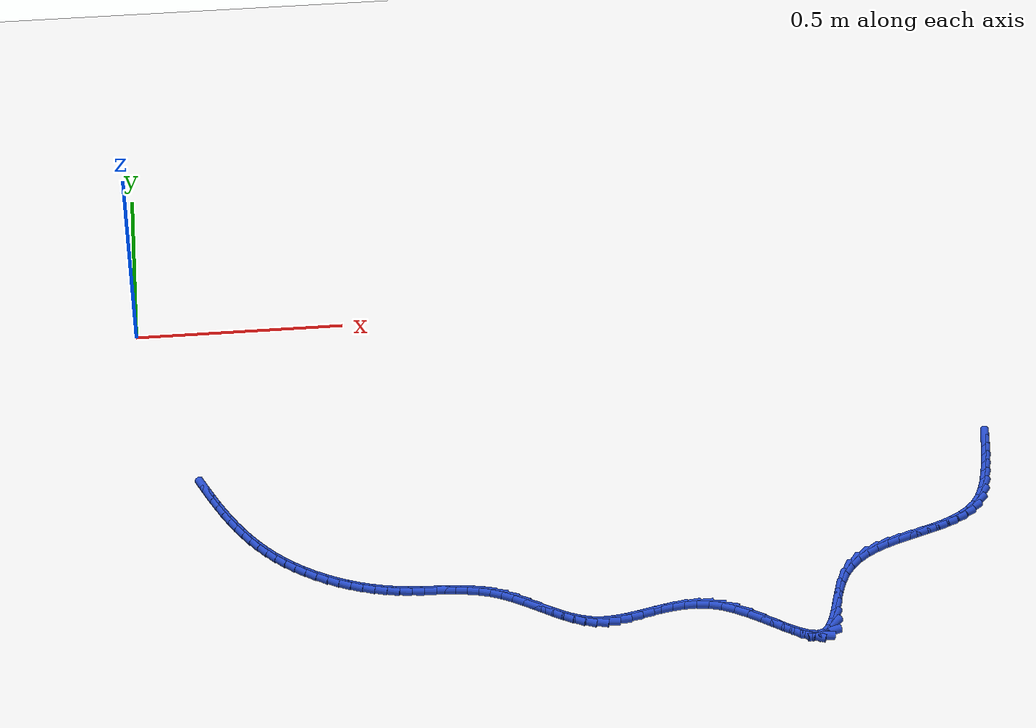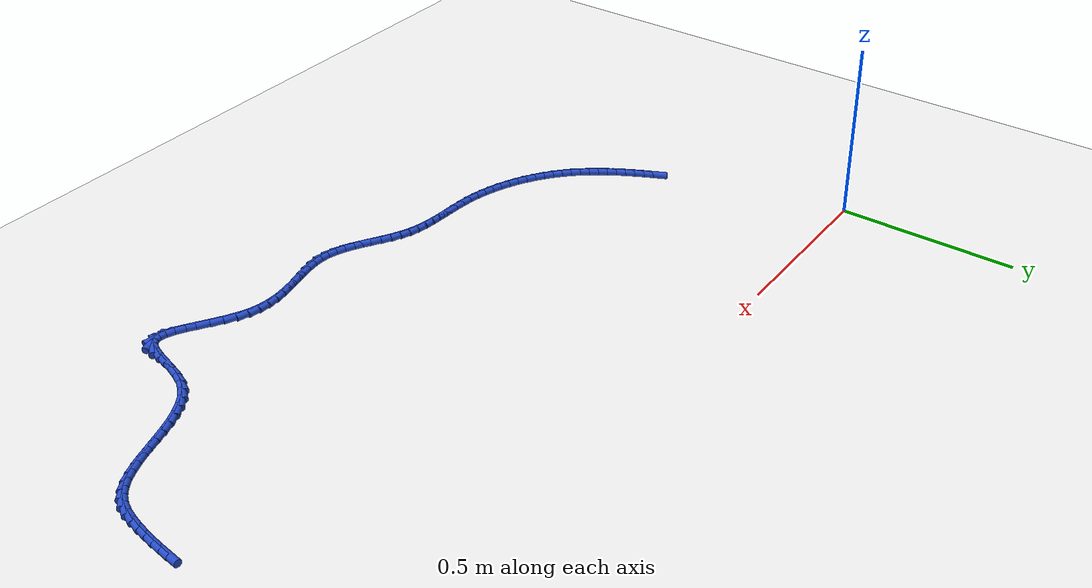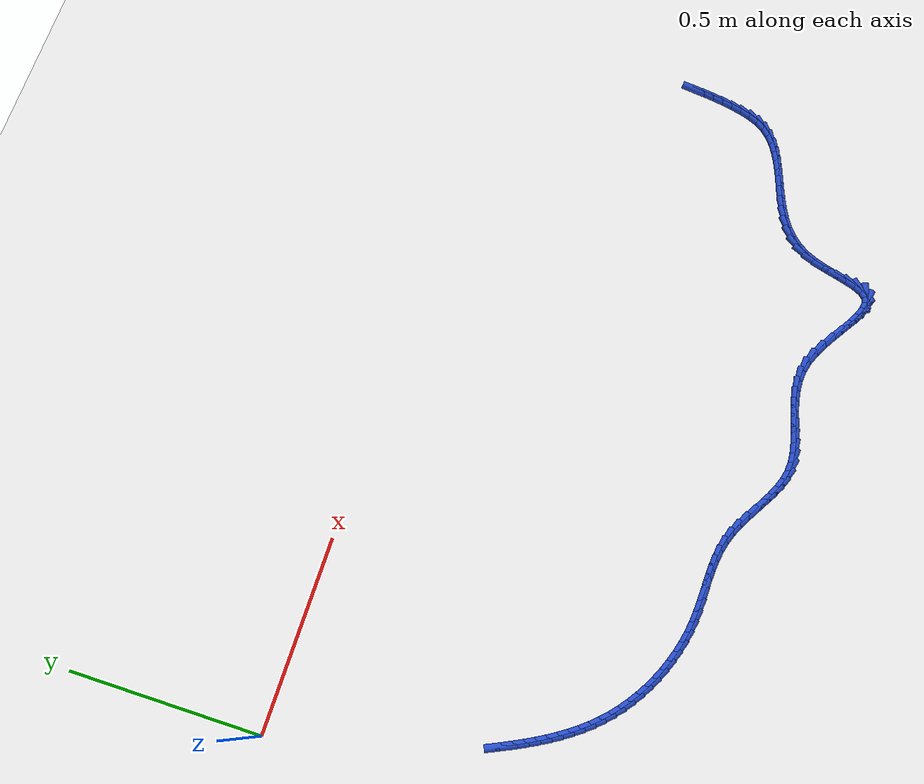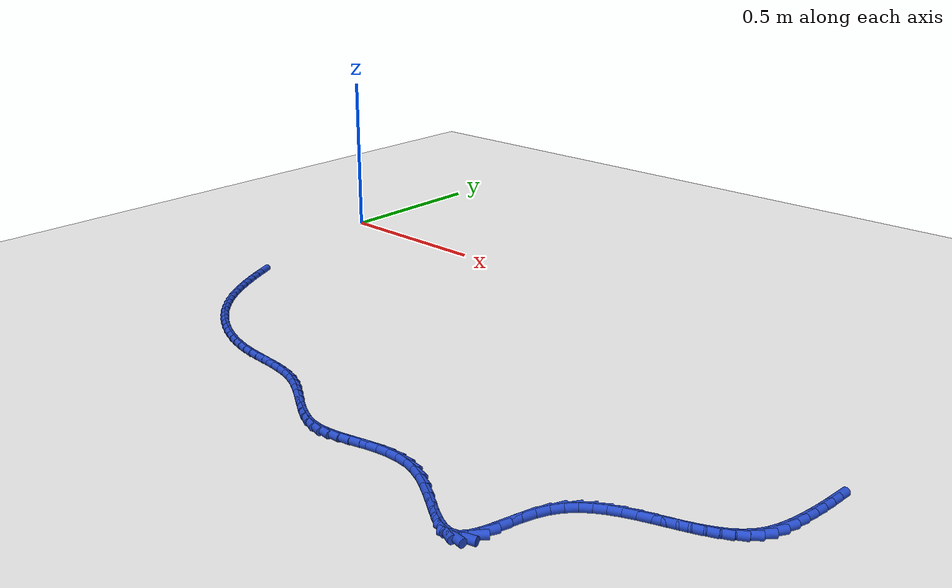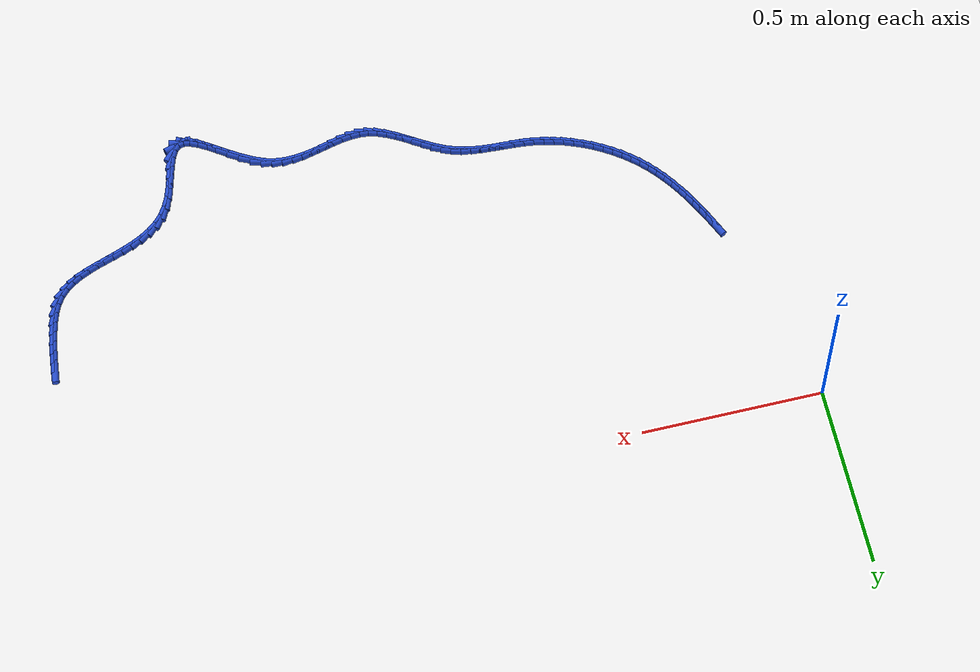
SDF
<sdf version="1.6">
 <world name="default">
  <model name="ground_plane">
   <static>1</static>
   <link name="link">
    <collision name="collision">
     <geometry><plane><normal>0 0 1</normal><size>100 100</size></plane></geometry>
     <surface><friction><ode><mu>100</mu><mu2>50</mu2></ode></friction></surface>
    </collision>
    <visual name="visual">
     <cast_shadows>0</cast_shadows>
     <geometry><plane><normal>0 0 1</normal><size>100 100</size></plane></geometry>
     <material>
      <script><uri>file://media/materials/scripts/gazebo.material</uri><name>Gazebo/WhiteGlow</name></script>
     </material>
    </visual>
   </link>
  </model>
  <model name="line">
   <link name="link_152">
    <pose>1.9929228253784923 -0.5451168489187431 0.01 0 1.57 1.4463939236743193</pose>
    <collision name="collision">
     <geometry><cylinder><radius>0.01</radius><length>0.08</length></cylinder></geometry>
    </collision>
    <visual name="visual">
     <material>
      <script><name>Gazebo/Blue</name><uri>file://media/materials/scripts/gazebo.material</uri></script>
     </material>
     <geometry><cylinder><radius>0.01</radius><length>0.08</length></cylinder></geometry>
    </visual>
   </link>
   <link name="link_153">
    <pose>1.9895435491003373 -0.5721406496584895 0.01 0 1.57 1.4238297437880345</pose>
    <collision name="collision">
     <geometry><cylinder><radius>0.01</radius><length>0.08</length></cylinder></geometry>
    </collision>
    <visual name="visual">
     <material>
      <script><name>Gazebo/Blue</name><uri>file://media/materials/scripts/gazebo.material</uri></script>
     </material>
     <geometry><cylinder><radius>0.01</radius><length>0.08</length></cylinder></geometry>
    </visual>
   </link>
   <link name="link_154">
    <pose>1.985530621487323 -0.599248811701757 0.01 0 1.57 1.3959650626158429</pose>
    <collision name="collision">
     <geometry><cylinder><radius>0.01</radius><length>0.08</length></cylinder></geometry>
    </collision>
    <visual name="visual">
     <material>
      <script><name>Gazebo/Blue</name><uri>file://media/materials/scripts/gazebo.material</uri></script>
     </material>
     <geometry><cylinder><radius>0.01</radius><length>0.08</length></cylinder></geometry>
    </visual>
   </link>
   <link name="link_155">
    <pose>1.9807239680181261 -0.6264612216915254 0.01 0 1.57 1.3631112398518261</pose>
    <collision name="collision">
     <geometry><cylinder><radius>0.01</radius><length>0.08</length></cylinder></geometry>
    </collision>
    <visual name="visual">
     <material>
      <script><name>Gazebo/Blue</name><uri>file://media/materials/scripts/gazebo.material</uri></script>
     </material>
     <geometry><cylinder><radius>0.01</radius><length>0.08</length></cylinder></geometry>
    </visual>
   </link>
   <link name="link_156">
    <pose>1.9749635141714244 -0.6537977662707755 0.01 0 1.57 1.3224568459726587</pose>
    <collision name="collision">
     <geometry><cylinder><radius>0.01</radius><length>0.08</length></cylinder></geometry>
    </collision>
    <visual name="visual">
     <material>
      <script><name>Gazebo/Blue</name><uri>file://media/materials/scripts/gazebo.material</uri></script>
     </material>
     <geometry><cylinder><radius>0.01</radius><length>0.08</length></cylinder></geometry>
    </visual>
   </link>
   <link name="link_157">
    <pose>1.968026517533882 -0.6811546710882513 0.01 0 1.57 1.2535599749692046</pose>
    <collision name="collision">
     <geometry><cylinder><radius>0.01</radius><length>0.08</length></cylinder></geometry>
    </collision>
    <visual name="visual">
     <material>
      <script><name>Gazebo/Blue</name><uri>file://media/materials/scripts/gazebo.material</uri></script>
     </material>
     <geometry><cylinder><radius>0.01</radius><length>0.08</length></cylinder></geometry>
    </visual>
   </link>
   <link name="link_158">
    <pose>1.9593150323326172 -0.7076877823257712 0.01 0 1.57 1.1426437426466174</pose>
    <collision name="collision">
     <geometry><cylinder><radius>0.01</radius><length>0.08</length></cylinder></geometry>
    </collision>
    <visual name="visual">
     <material>
      <script><name>Gazebo/Blue</name><uri>file://media/materials/scripts/gazebo.material</uri></script>
     </material>
     <geometry><cylinder><radius>0.01</radius><length>0.08</length></cylinder></geometry>
    </visual>
   </link>
   <link name="link_159">
    <pose>1.948092093891994 -0.7322786236184735 0.01 0 1.57 0.9804187607378773</pose>
    <collision name="collision">
     <geometry><cylinder><radius>0.01</radius><length>0.08</length></cylinder></geometry>
    </collision>
    <visual name="visual">
     <material>
      <script><name>Gazebo/Blue</name><uri>file://media/materials/scripts/gazebo.material</uri></script>
     </material>
     <geometry><cylinder><radius>0.01</radius><length>0.08</length></cylinder></geometry>
    </visual>
   </link>
   <link name="link_160">
    <pose>1.9336439052996024 -0.7538397819777481 0.01 0 1.57 0.7970417764565815</pose>
    <collision name="collision">
     <geometry><cylinder><radius>0.01</radius><length>0.08</length></cylinder></geometry>
    </collision>
    <visual name="visual">
     <material>
      <script><name>Gazebo/Blue</name><uri>file://media/materials/scripts/gazebo.material</uri></script>
     </material>
     <geometry><cylinder><radius>0.01</radius><length>0.08</length></cylinder></geometry>
    </visual>
   </link>
   <link name="link_161">
    <pose>1.9158373188042148 -0.7720659387543269 0.01 0 1.57 0.6398286519779628</pose>
    <collision name="collision">
     <geometry><cylinder><radius>0.01</radius><length>0.08</length></cylinder></geometry>
    </collision>
    <visual name="visual">
     <material>
      <script><name>Gazebo/Blue</name><uri>file://media/materials/scripts/gazebo.material</uri></script>
     </material>
     <geometry><cylinder><radius>0.01</radius><length>0.08</length></cylinder></geometry>
    </visual>
   </link>
   <link name="link_162">
    <pose>1.8951445229860369 -0.7874671215525332 0.01 0 1.57 0.5170759189633178</pose>
    <collision name="collision">
     <geometry><cylinder><radius>0.01</radius><length>0.08</length></cylinder></geometry>
    </collision>
    <visual name="visual">
     <material>
      <script><name>Gazebo/Blue</name><uri>file://media/materials/scripts/gazebo.material</uri></script>
     </material>
     <geometry><cylinder><radius>0.01</radius><length>0.08</length></cylinder></geometry>
    </visual>
   </link>
   <link name="link_163">
    <pose>1.8720660410210652 -0.8005915227213516 0.01 0 1.57 0.42824311226817674</pose>
    <collision name="collision">
     <geometry><cylinder><radius>0.01</radius><length>0.08</length></cylinder></geometry>
    </collision>
    <visual name="visual">
     <material>
      <script><name>Gazebo/Blue</name><uri>file://media/materials/scripts/gazebo.material</uri></script>
     </material>
     <geometry><cylinder><radius>0.01</radius><length>0.08</length></cylinder></geometry>
    </visual>
   </link>
   <link name="link_164">
    <pose>1.8471023960852972 -0.8119873346097676 0.01 0 1.57 0.3698642692419186</pose>
    <collision name="collision">
     <geometry><cylinder><radius>0.01</radius><length>0.08</length></cylinder></geometry>
    </collision>
    <visual name="visual">
     <material>
      <script><name>Gazebo/Blue</name><uri>file://media/materials/scripts/gazebo.material</uri></script>
     </material>
     <geometry><cylinder><radius>0.01</radius><length>0.08</length></cylinder></geometry>
    </visual>
   </link>
   <link name="link_165">
    <pose>1.8207541113547296 -0.8222027495667665 0.01 0 1.57 0.33837065938804756</pose>
    <collision name="collision">
     <geometry><cylinder><radius>0.01</radius><length>0.08</length></cylinder></geometry>
    </collision>
    <visual name="visual">
     <material>
      <script><name>Gazebo/Blue</name><uri>file://media/materials/scripts/gazebo.material</uri></script>
     </material>
     <geometry><cylinder><radius>0.01</radius><length>0.08</length></cylinder></geometry>
    </visual>
   </link>
   <link name="link_166">
    <pose>1.7935217100053602 -0.8317859599413329 0.01 0 1.57 0.3312968429400512</pose>
    <collision name="collision">
     <geometry><cylinder><radius>0.01</radius><length>0.08</length></cylinder></geometry>
    </collision>
    <visual name="visual">
     <material>
      <script><name>Gazebo/Blue</name><uri>file://media/materials/scripts/gazebo.material</uri></script>
     </material>
     <geometry><cylinder><radius>0.01</radius><length>0.08</length></cylinder></geometry>
    </visual>
   </link>
   <link name="link_167">
    <pose>1.7659057152131858 -0.8412851580824519 0.01 0 1.57 0.34760521674052786</pose>
    <collision name="collision">
     <geometry><cylinder><radius>0.01</radius><length>0.08</length></cylinder></geometry>
    </collision>
    <visual name="visual">
     <material>
      <script><name>Gazebo/Blue</name><uri>file://media/materials/scripts/gazebo.material</uri></script>
     </material>
     <geometry><cylinder><radius>0.01</radius><length>0.08</length></cylinder></geometry>
    </visual>
   </link>
   <link name="link_168">
    <pose>1.7384066501542021 -0.8512485363391087 0.01 0 1.57 0.3876406410144004</pose>
    <collision name="collision">
     <geometry><cylinder><radius>0.01</radius><length>0.08</length></cylinder></geometry>
    </collision>
    <visual name="visual">
     <material>
      <script><name>Gazebo/Blue</name><uri>file://media/materials/scripts/gazebo.material</uri></script>
     </material>
     <geometry><cylinder><radius>0.01</radius><length>0.08</length></cylinder></geometry>
    </visual>
   </link>
   <link name="link_169">
    <pose>1.7115250380044078 -0.8622242870602885 0.01 0 1.57 0.452861790964993</pose>
    <collision name="collision">
     <geometry><cylinder><radius>0.01</radius><length>0.08</length></cylinder></geometry>
    </collision>
    <visual name="visual">
     <material>
      <script><name>Gazebo/Blue</name><uri>file://media/materials/scripts/gazebo.material</uri></script>
     </material>
     <geometry><cylinder><radius>0.01</radius><length>0.08</length></cylinder></geometry>
    </visual>
   </link>
   <link name="link_170">
    <pose>1.6857614019397984 -0.8747606025949762 0.01 0 1.57 0.5452169172966471</pose>
    <collision name="collision">
     <geometry><cylinder><radius>0.01</radius><length>0.08</length></cylinder></geometry>
    </collision>
    <visual name="visual">
     <material>
      <script><name>Gazebo/Blue</name><uri>file://media/materials/scripts/gazebo.material</uri></script>
     </material>
     <geometry><cylinder><radius>0.01</radius><length>0.08</length></cylinder></geometry>
    </visual>
   </link>
   <link name="link_171">
    <pose>1.661616265136372 -0.889405675292157 0.01 0 1.57 0.6658510329597122</pose>
    <collision name="collision">
     <geometry><cylinder><radius>0.01</radius><length>0.08</length></cylinder></geometry>
    </collision>
    <visual name="visual">
     <material>
      <script><name>Gazebo/Blue</name><uri>file://media/materials/scripts/gazebo.material</uri></script>
     </material>
     <geometry><cylinder><radius>0.01</radius><length>0.08</length></cylinder></geometry>
    </visual>
   </link>
   <link name="link_172">
    <pose>1.6395901507701236 -0.9067076975008161 0.01 0 1.57 0.8129655298508428</pose>
    <collision name="collision">
     <geometry><cylinder><radius>0.01</radius><length>0.08</length></cylinder></geometry>
    </collision>
    <visual name="visual">
     <material>
      <script><name>Gazebo/Blue</name><uri>file://media/materials/scripts/gazebo.material</uri></script>
     </material>
     <geometry><cylinder><radius>0.01</radius><length>0.08</length></cylinder></geometry>
    </visual>
   </link>
   <link name="link_173">
    <pose>1.620183582017053 -0.9272148615699383 0.01 0 1.57 0.979579925469921</pose>
    <collision name="collision">
     <geometry><cylinder><radius>0.01</radius><length>0.08</length></cylinder></geometry>
    </collision>
    <visual name="visual">
     <material>
      <script><name>Gazebo/Blue</name><uri>file://media/materials/scripts/gazebo.material</uri></script>
     </material>
     <geometry><cylinder><radius>0.01</radius><length>0.08</length></cylinder></geometry>
    </visual>
   </link>
   <link name="link_174">
    <pose>1.603897068375843 -0.9514753374921618 0.01 0 1.57 1.139088078600897</pose>
    <collision name="collision">
     <geometry><cylinder><radius>0.01</radius><length>0.08</length></cylinder></geometry>
    </collision>
    <visual name="visual">
     <material>
      <script><name>Gazebo/Blue</name><uri>file://media/materials/scripts/gazebo.material</uri></script>
     </material>
     <geometry><cylinder><radius>0.01</radius><length>0.08</length></cylinder></geometry>
    </visual>
   </link>
   <link name="link_175">
    <pose>1.5909503104205471 -0.9795782970594427 0.01 0 1.57 1.2414228665602984</pose>
    <collision name="collision">
     <geometry><cylinder><radius>0.01</radius><length>0.08</length></cylinder></geometry>
    </collision>
    <visual name="visual">
     <material>
      <script><name>Gazebo/Blue</name><uri>file://media/materials/scripts/gazebo.material</uri></script>
     </material>
     <geometry><cylinder><radius>0.01</radius><length>0.08</length></cylinder></geometry>
    </visual>
   </link>
   <link name="link_176">
    <pose>1.5805603160139226 -1.0099739536477046 0.01 0 1.57 1.2910649041439435</pose>
    <collision name="collision">
     <geometry><cylinder><radius>0.01</radius><length>0.08</length></cylinder></geometry>
    </collision>
    <visual name="visual">
     <material>
      <script><name>Gazebo/Blue</name><uri>file://media/materials/scripts/gazebo.material</uri></script>
     </material>
     <geometry><cylinder><radius>0.01</radius><length>0.08</length></cylinder></geometry>
    </visual>
   </link>
   <link name="link_177">
    <pose>1.5717203830424857 -1.04074685391945 0.01 0 1.57 1.2942747025828312</pose>
    <collision name="collision">
     <geometry><cylinder><radius>0.01</radius><length>0.08</length></cylinder></geometry>
    </collision>
    <visual name="visual">
     <material>
      <script><name>Gazebo/Blue</name><uri>file://media/materials/scripts/gazebo.material</uri></script>
     </material>
     <geometry><cylinder><radius>0.01</radius><length>0.08</length></cylinder></geometry>
    </visual>
   </link>
   <link name="link_178">
    <pose>1.5634238093927524 -1.0699815445371819 0.01 0 1.57 1.2432536847223803</pose>
    <collision name="collision">
     <geometry><cylinder><radius>0.01</radius><length>0.08</length></cylinder></geometry>
    </collision>
    <visual name="visual">
     <material>
      <script><name>Gazebo/Blue</name><uri>file://media/materials/scripts/gazebo.material</uri></script>
     </material>
     <geometry><cylinder><radius>0.01</radius><length>0.08</length></cylinder></geometry>
    </visual>
   </link>
   <link name="link_179">
    <pose>1.55466389295124 -1.0957625721634034 0.01 0 1.57 1.1062083098854516</pose>
    <collision name="collision">
     <geometry><cylinder><radius>0.01</radius><length>0.08</length></cylinder></geometry>
    </collision>
    <visual name="visual">
     <material>
      <script><name>Gazebo/Blue</name><uri>file://media/materials/scripts/gazebo.material</uri></script>
     </material>
     <geometry><cylinder><radius>0.01</radius><length>0.08</length></cylinder></geometry>
    </visual>
   </link>
   <link name="link_180">
    <pose>1.5444339316044642 -1.1161744834606175 0.01 0 1.57 0.8016788510994947</pose>
    <collision name="collision">
     <geometry><cylinder><radius>0.01</radius><length>0.08</length></cylinder></geometry>
    </collision>
    <visual name="visual">
     <material>
      <script><name>Gazebo/Blue</name><uri>file://media/materials/scripts/gazebo.material</uri></script>
     </material>
     <geometry><cylinder><radius>0.01</radius><length>0.08</length></cylinder></geometry>
    </visual>
   </link>
   <link name="link_181">
    <pose>1.5317272232389412 -1.1293018250913271 0.01 0 1.57 0.27097809119334054</pose>
    <collision name="collision">
     <geometry><cylinder><radius>0.01</radius><length>0.08</length></cylinder></geometry>
    </collision>
    <visual name="visual">
     <material>
      <script><name>Gazebo/Blue</name><uri>file://media/materials/scripts/gazebo.material</uri></script>
     </material>
     <geometry><cylinder><radius>0.01</radius><length>0.08</length></cylinder></geometry>
    </visual>
   </link>
   <link name="link_182">
    <pose>1.5157446792359226 -1.1337419584876052 0.01 0 1.57 -0.17147034835206723</pose>
    <collision name="collision">
     <geometry><cylinder><radius>0.01</radius><length>0.08</length></cylinder></geometry>
    </collision>
    <visual name="visual">
     <material>
      <script><name>Gazebo/Blue</name><uri>file://media/materials/scripts/gazebo.material</uri></script>
     </material>
     <geometry><cylinder><radius>0.01</radius><length>0.08</length></cylinder></geometry>
    </visual>
   </link>
   <link name="link_183">
    <pose>1.496634735066565 -1.130432672655601 0.01 0 1.57 -0.4088621711738325</pose>
    <collision name="collision">
     <geometry><cylinder><radius>0.01</radius><length>0.08</length></cylinder></geometry>
    </collision>
    <visual name="visual">
     <material>
      <script><name>Gazebo/Blue</name><uri>file://media/materials/scripts/gazebo.material</uri></script>
     </material>
     <geometry><cylinder><radius>0.01</radius><length>0.08</length></cylinder></geometry>
    </visual>
   </link>
   <link name="link_184">
    <pose>1.4748159865134387 -1.1209790648514495 0.01 0 1.57 -0.5258816812131001</pose>
    <collision name="collision">
     <geometry><cylinder><radius>0.01</radius><length>0.08</length></cylinder></geometry>
    </collision>
    <visual name="visual">
     <material>
      <script><name>Gazebo/Blue</name><uri>file://media/materials/scripts/gazebo.material</uri></script>
     </material>
     <geometry><cylinder><radius>0.01</radius><length>0.08</length></cylinder></geometry>
    </visual>
   </link>
   <link name="link_185">
    <pose>1.4507070494721912 -1.1069862820114982 0.01 0 1.57 -0.5774427307989359</pose>
    <collision name="collision">
     <geometry><cylinder><radius>0.01</radius><length>0.08</length></cylinder></geometry>
    </collision>
    <visual name="visual">
     <material>
      <script><name>Gazebo/Blue</name><uri>file://media/materials/scripts/gazebo.material</uri></script>
     </material>
     <geometry><cylinder><radius>0.01</radius><length>0.08</length></cylinder></geometry>
    </visual>
   </link>
   <link name="link_186">
    <pose>1.424726539838469 -1.0900594710720948 0.01 0 1.57 -0.5871621454096955</pose>
    <collision name="collision">
     <geometry><cylinder><radius>0.01</radius><length>0.08</length></cylinder></geometry>
    </collision>
    <visual name="visual">
     <material>
      <script><name>Gazebo/Blue</name><uri>file://media/materials/scripts/gazebo.material</uri></script>
     </material>
     <geometry><cylinder><radius>0.01</radius><length>0.08</length></cylinder></geometry>
    </visual>
   </link>
   <link name="link_187">
    <pose>1.3972930735079199 -1.071803778969587 0.01 0 1.57 -0.5633102013894868</pose>
    <collision name="collision">
     <geometry><cylinder><radius>0.01</radius><length>0.08</length></cylinder></geometry>
    </collision>
    <visual name="visual">
     <material>
      <script><name>Gazebo/Blue</name><uri>file://media/materials/scripts/gazebo.material</uri></script>
     </material>
     <geometry><cylinder><radius>0.01</radius><length>0.08</length></cylinder></geometry>
    </visual>
   </link>
   <link name="link_188">
    <pose>1.3688252663761882 -1.0538243526403215 0.01 0 1.57 -0.5055337128214602</pose>
    <collision name="collision">
     <geometry><cylinder><radius>0.01</radius><length>0.08</length></cylinder></geometry>
    </collision>
    <visual name="visual">
     <material>
      <script><name>Gazebo/Blue</name><uri>file://media/materials/scripts/gazebo.material</uri></script>
     </material>
     <geometry><cylinder><radius>0.01</radius><length>0.08</length></cylinder></geometry>
    </visual>
   </link>
   <link name="link_189">
    <pose>1.3397417343389246 -1.0377263390206473 0.01 0 1.57 -0.40669679565847544</pose>
    <collision name="collision">
     <geometry><cylinder><radius>0.01</radius><length>0.08</length></cylinder></geometry>
    </collision>
    <visual name="visual">
     <material>
      <script><name>Gazebo/Blue</name><uri>file://media/materials/scripts/gazebo.material</uri></script>
     </material>
     <geometry><cylinder><radius>0.01</radius><length>0.08</length></cylinder></geometry>
    </visual>
   </link>
   <link name="link_190">
    <pose>1.310461093291774 -1.0251148850469112 0.01 0 1.57 -0.2593577358582379</pose>
    <collision name="collision">
     <geometry><cylinder><radius>0.01</radius><length>0.08</length></cylinder></geometry>
    </collision>
    <visual name="visual">
     <material>
      <script><name>Gazebo/Blue</name><uri>file://media/materials/scripts/gazebo.material</uri></script>
     </material>
     <geometry><cylinder><radius>0.01</radius><length>0.08</length></cylinder></geometry>
    </visual>
   </link>
   <link name="link_191">
    <pose>1.2813702976985268 -1.017396109530627 0.01 0 1.57 -0.10394275220340256</pose>
    <collision name="collision">
     <geometry><cylinder><radius>0.01</radius><length>0.08</length></cylinder></geometry>
    </collision>
    <visual name="visual">
     <material>
      <script><name>Gazebo/Blue</name><uri>file://media/materials/scripts/gazebo.material</uri></script>
     </material>
     <geometry><cylinder><radius>0.01</radius><length>0.08</length></cylinder></geometry>
    </visual>
   </link>
   <link name="link_192">
    <pose>1.2526048282983984 -1.0143953327877526 0.01 0 1.57 0.027737550483506773</pose>
    <collision name="collision">
     <geometry><cylinder><radius>0.01</radius><length>0.08</length></cylinder></geometry>
    </collision>
    <visual name="visual">
     <material>
      <script><name>Gazebo/Blue</name><uri>file://media/materials/scripts/gazebo.material</uri></script>
     </material>
     <geometry><cylinder><radius>0.01</radius><length>0.08</length></cylinder></geometry>
    </visual>
   </link>
   <link name="link_193">
    <pose>1.2241802334538643 -1.0151839636826998 0.01 0 1.57 0.12912940280586996</pose>
    <collision name="collision">
     <geometry><cylinder><radius>0.01</radius><length>0.08</length></cylinder></geometry>
    </collision>
    <visual name="visual">
     <material>
      <script><name>Gazebo/Blue</name><uri>file://media/materials/scripts/gazebo.material</uri></script>
     </material>
     <geometry><cylinder><radius>0.01</radius><length>0.08</length></cylinder></geometry>
    </visual>
   </link>
   <link name="link_194">
    <pose>1.1961113226242495 -1.018828766232823 0.01 0 1.57 0.1983692783280796</pose>
    <collision name="collision">
     <geometry><cylinder><radius>0.01</radius><length>0.08</length></cylinder></geometry>
    </collision>
    <visual name="visual">
     <material>
      <script><name>Gazebo/Blue</name><uri>file://media/materials/scripts/gazebo.material</uri></script>
     </material>
     <geometry><cylinder><radius>0.01</radius><length>0.08</length></cylinder></geometry>
    </visual>
   </link>
   <link name="link_195">
    <pose>1.1684129052688779 -1.0243965044554775 0.01 0 1.57 0.23562427103378905</pose>
    <collision name="collision">
     <geometry><cylinder><radius>0.01</radius><length>0.08</length></cylinder></geometry>
    </collision>
    <visual name="visual">
     <material>
      <script><name>Gazebo/Blue</name><uri>file://media/materials/scripts/gazebo.material</uri></script>
     </material>
     <geometry><cylinder><radius>0.01</radius><length>0.08</length></cylinder></geometry>
    </visual>
   </link>
   <link name="link_196">
    <pose>1.1410997908470741 -1.0309539423680176 0.01 0 1.57 0.2409757797832337</pose>
    <collision name="collision">
     <geometry><cylinder><radius>0.01</radius><length>0.08</length></cylinder></geometry>
    </collision>
    <visual name="visual">
     <material>
      <script><name>Gazebo/Blue</name><uri>file://media/materials/scripts/gazebo.material</uri></script>
     </material>
     <geometry><cylinder><radius>0.01</radius><length>0.08</length></cylinder></geometry>
    </visual>
   </link>
   <link name="link_197">
    <pose>1.1141867888181625 -1.0375678439877984 0.01 0 1.57 0.21322007713997204</pose>
    <collision name="collision">
     <geometry><cylinder><radius>0.01</radius><length>0.08</length></cylinder></geometry>
    </collision>
    <visual name="visual">
     <material>
      <script><name>Gazebo/Blue</name><uri>file://media/materials/scripts/gazebo.material</uri></script>
     </material>
     <geometry><cylinder><radius>0.01</radius><length>0.08</length></cylinder></geometry>
    </visual>
   </link>
   <link name="link_198">
    <pose>1.0876887086414682 -1.0433049733321742 0.01 0 1.57 0.14952274538896182</pose>
    <collision name="collision">
     <geometry><cylinder><radius>0.01</radius><length>0.08</length></cylinder></geometry>
    </collision>
    <visual name="visual">
     <material>
      <script><name>Gazebo/Blue</name><uri>file://media/materials/scripts/gazebo.material</uri></script>
     </material>
     <geometry><cylinder><radius>0.01</radius><length>0.08</length></cylinder></geometry>
    </visual>
   </link>
   <link name="link_199">
    <pose>1.0616203597763159 -1.0472320944185003 0.01 0 1.57 0.04616938797169632</pose>
    <collision name="collision">
     <geometry><cylinder><radius>0.01</radius><length>0.08</length></cylinder></geometry>
    </collision>
    <visual name="visual">
     <material>
      <script><name>Gazebo/Blue</name><uri>file://media/materials/scripts/gazebo.material</uri></script>
     </material>
     <geometry><cylinder><radius>0.01</radius><length>0.08</length></cylinder></geometry>
    </visual>
   </link>
   <link name="link_200">
    <pose>1.0359965516820286 -1.0484159712641303 0.01 0 1.57 -0.0985769180741783</pose>
    <collision name="collision">
     <geometry><cylinder><radius>0.01</radius><length>0.08</length></cylinder></geometry>
    </collision>
    <visual name="visual">
     <material>
      <script><name>Gazebo/Blue</name><uri>file://media/materials/scripts/gazebo.material</uri></script>
     </material>
     <geometry><cylinder><radius>0.01</radius><length>0.08</length></cylinder></geometry>
    </visual>
   </link>
   <link name="link_201">
    <pose>1.0108317941849565 -1.045927240460608 0.01 0 1.57 -0.25881173459968154</pose>
    <collision name="collision">
     <geometry><cylinder><radius>0.01</radius><length>0.08</length></cylinder></geometry>
    </collision>
    <visual name="visual">
     <material>
      <script><name>Gazebo/Blue</name><uri>file://media/materials/scripts/gazebo.material</uri></script>
     </material>
     <geometry><cylinder><radius>0.01</radius><length>0.08</length></cylinder></geometry>
    </visual>
   </link>
   <link name="link_202">
    <pose>0.9860986142726104 -1.039379141286879 0.01 0 1.57 -0.3851760252048122</pose>
    <collision name="collision">
     <geometry><cylinder><radius>0.01</radius><length>0.08</length></cylinder></geometry>
    </collision>
    <visual name="visual">
     <material>
      <script><name>Gazebo/Blue</name><uri>file://media/materials/scripts/gazebo.material</uri></script>
     </material>
     <geometry><cylinder><radius>0.01</radius><length>0.08</length></cylinder></geometry>
    </visual>
   </link>
   <link name="link_203">
    <pose>0.9616847242043528 -1.0294810918583015 0.01 0 1.57 -0.4734421646023014</pose>
    <collision name="collision">
     <geometry><cylinder><radius>0.01</radius><length>0.08</length></cylinder></geometry>
    </collision>
    <visual name="visual">
     <material>
      <script><name>Gazebo/Blue</name><uri>file://media/materials/scripts/gazebo.material</uri></script>
     </material>
     <geometry><cylinder><radius>0.01</radius><length>0.08</length></cylinder></geometry>
    </visual>
   </link>
   <link name="link_204">
    <pose>0.9374676179666871 -1.0170745752593222 0.01 0 1.57 -0.527771042732015</pose>
    <collision name="collision">
     <geometry><cylinder><radius>0.01</radius><length>0.08</length></cylinder></geometry>
    </collision>
    <visual name="visual">
     <material>
      <script><name>Gazebo/Blue</name><uri>file://media/materials/scripts/gazebo.material</uri></script>
     </material>
     <geometry><cylinder><radius>0.01</radius><length>0.08</length></cylinder></geometry>
    </visual>
   </link>
   <link name="link_205">
    <pose>0.9133247895461192 -1.00300107457439 0.01 0 1.57 -0.5520206220208611</pose>
    <collision name="collision">
     <geometry><cylinder><radius>0.01</radius><length>0.08</length></cylinder></geometry>
    </collision>
    <visual name="visual">
     <material>
      <script><name>Gazebo/Blue</name><uri>file://media/materials/scripts/gazebo.material</uri></script>
     </material>
     <geometry><cylinder><radius>0.01</radius><length>0.08</length></cylinder></geometry>
    </visual>
   </link>
   <link name="link_206">
    <pose>0.8891337329291521 -0.9881020728879528 0.01 0 1.57 -0.5484076843747882</pose>
    <collision name="collision">
     <geometry><cylinder><radius>0.01</radius><length>0.08</length></cylinder></geometry>
    </collision>
    <visual name="visual">
     <material>
      <script><name>Gazebo/Blue</name><uri>file://media/materials/scripts/gazebo.material</uri></script>
     </material>
     <geometry><cylinder><radius>0.01</radius><length>0.08</length></cylinder></geometry>
    </visual>
   </link>
   <link name="link_207">
    <pose>0.8647719421022907 -0.9732190532844587 0.01 0 1.57 -0.5172166571228942</pose>
    <collision name="collision">
     <geometry><cylinder><radius>0.01</radius><length>0.08</length></cylinder></geometry>
    </collision>
    <visual name="visual">
     <material>
      <script><name>Gazebo/Blue</name><uri>file://media/materials/scripts/gazebo.material</uri></script>
     </material>
     <geometry><cylinder><radius>0.01</radius><length>0.08</length></cylinder></geometry>
    </visual>
   </link>
   <link name="link_208">
    <pose>0.8401169110520387 -0.9591934988483554 0.01 0 1.57 -0.45696326461602665</pose>
    <collision name="collision">
     <geometry><cylinder><radius>0.01</radius><length>0.08</length></cylinder></geometry>
    </collision>
    <visual name="visual">
     <material>
      <script><name>Gazebo/Blue</name><uri>file://media/materials/scripts/gazebo.material</uri></script>
     </material>
     <geometry><cylinder><radius>0.01</radius><length>0.08</length></cylinder></geometry>
    </visual>
   </link>
   <link name="link_209">
    <pose>0.8150461337649011 -0.9468668926640915 0.01 0 1.57 -0.3655309898741852</pose>
    <collision name="collision">
     <geometry><cylinder><radius>0.01</radius><length>0.08</length></cylinder></geometry>
    </collision>
    <visual name="visual">
     <material>
      <script><name>Gazebo/Blue</name><uri>file://media/materials/scripts/gazebo.material</uri></script>
     </material>
     <geometry><cylinder><radius>0.01</radius><length>0.08</length></cylinder></geometry>
    </visual>
   </link>
   <link name="link_210">
    <pose>0.7894392985583232 -0.9370663705577359 0.01 0 1.57 -0.2623302591763484</pose>
    <collision name="collision">
     <geometry><cylinder><radius>0.01</radius><length>0.08</length></cylinder></geometry>
    </collision>
    <visual name="visual">
     <material>
      <script><name>Gazebo/Blue</name><uri>file://media/materials/scripts/gazebo.material</uri></script>
     </material>
     <geometry><cylinder><radius>0.01</radius><length>0.08</length></cylinder></geometry>
    </visual>
   </link>
   <link name="link_211">
    <pose>0.7632649524816368 -0.9300380807014945 0.01 0 1.57 -0.17737765023119453</pose>
    <collision name="collision">
     <geometry><cylinder><radius>0.01</radius><length>0.08</length></cylinder></geometry>
    </collision>
    <visual name="visual">
     <material>
      <script><name>Gazebo/Blue</name><uri>file://media/materials/scripts/gazebo.material</uri></script>
     </material>
     <geometry><cylinder><radius>0.01</radius><length>0.08</length></cylinder></geometry>
    </visual>
   </link>
   <link name="link_212">
    <pose>0.7366091724821879 -0.9252597220869785 0.01 0 1.57 -0.11426113931549535</pose>
    <collision name="collision">
     <geometry><cylinder><radius>0.01</radius><length>0.08</length></cylinder></geometry>
    </collision>
    <visual name="visual">
     <material>
      <script><name>Gazebo/Blue</name><uri>file://media/materials/scripts/gazebo.material</uri></script>
     </material>
     <geometry><cylinder><radius>0.01</radius><length>0.08</length></cylinder></geometry>
    </visual>
   </link>
   <link name="link_213">
    <pose>0.7095661050104615 -0.9221562326366639 0.01 0 1.57 -0.07316689826756202</pose>
    <collision name="collision">
     <geometry><cylinder><radius>0.01</radius><length>0.08</length></cylinder></geometry>
    </collision>
    <visual name="visual">
     <material>
      <script><name>Gazebo/Blue</name><uri>file://media/materials/scripts/gazebo.material</uri></script>
     </material>
     <geometry><cylinder><radius>0.01</radius><length>0.08</length></cylinder></geometry>
    </visual>
   </link>
   <link name="link_214">
    <pose>0.6822298965169432 -0.9201525502730251 0.01 0 1.57 -0.05365922443337699</pose>
    <collision name="collision">
     <geometry><cylinder><radius>0.01</radius><length>0.08</length></cylinder></geometry>
    </collision>
    <visual name="visual">
     <material>
      <script><name>Gazebo/Blue</name><uri>file://media/materials/scripts/gazebo.material</uri></script>
     </material>
     <geometry><cylinder><radius>0.01</radius><length>0.08</length></cylinder></geometry>
    </visual>
   </link>
   <link name="link_215">
    <pose>0.6546946934521176 -0.9186736129185372 0.01 0 1.57 -0.05527113016862672</pose>
    <collision name="collision">
     <geometry><cylinder><radius>0.01</radius><length>0.08</length></cylinder></geometry>
    </collision>
    <visual name="visual">
     <material>
      <script><name>Gazebo/Blue</name><uri>file://media/materials/scripts/gazebo.material</uri></script>
     </material>
     <geometry><cylinder><radius>0.01</radius><length>0.08</length></cylinder></geometry>
    </visual>
   </link>
   <link name="link_216">
    <pose>0.6270546422664698 -0.9171443584956758 0.01 0 1.57 -0.07776599824921757</pose>
    <collision name="collision">
     <geometry><cylinder><radius>0.01</radius><length>0.08</length></cylinder></geometry>
    </collision>
    <visual name="visual">
     <material>
      <script><name>Gazebo/Blue</name><uri>file://media/materials/scripts/gazebo.material</uri></script>
     </material>
     <geometry><cylinder><radius>0.01</radius><length>0.08</length></cylinder></geometry>
    </visual>
   </link>
   <link name="link_217">
    <pose>0.5994038894104842 -0.9149897249269153 0.01 0 1.57 -0.12108508425664884</pose>
    <collision name="collision">
     <geometry><cylinder><radius>0.01</radius><length>0.08</length></cylinder></geometry>
    </collision>
    <visual name="visual">
     <material>
      <script><name>Gazebo/Blue</name><uri>file://media/materials/scripts/gazebo.material</uri></script>
     </material>
     <geometry><cylinder><radius>0.01</radius><length>0.08</length></cylinder></geometry>
    </visual>
   </link>
   <link name="link_218">
    <pose>0.5718365822260063 -0.9116353255495847 0.01 0 1.57 -0.17899890974892152</pose>
    <collision name="collision">
     <geometry><cylinder><radius>0.01</radius><length>0.08</length></cylinder></geometry>
    </collision>
    <visual name="visual">
     <material>
      <script><name>Gazebo/Blue</name><uri>file://media/materials/scripts/gazebo.material</uri></script>
     </material>
     <geometry><cylinder><radius>0.01</radius><length>0.08</length></cylinder></geometry>
    </visual>
   </link>
   <link name="link_219">
    <pose>0.5444470961321038 -0.9066795957963849 0.01 0 1.57 -0.23726440346073704</pose>
    <collision name="collision">
     <geometry><cylinder><radius>0.01</radius><length>0.08</length></cylinder></geometry>
    </collision>
    <visual name="visual">
     <material>
      <script><name>Gazebo/Blue</name><uri>file://media/materials/scripts/gazebo.material</uri></script>
     </material>
     <geometry><cylinder><radius>0.01</radius><length>0.08</length></cylinder></geometry>
    </visual>
   </link>
   <link name="link_220">
    <pose>0.5173303361143818 -0.9001222422026192 0.01 0 1.57 -0.29412107775294993</pose>
    <collision name="collision">
     <geometry><cylinder><radius>0.01</radius><length>0.08</length></cylinder></geometry>
    </collision>
    <visual name="visual">
     <material>
      <script><name>Gazebo/Blue</name><uri>file://media/materials/scripts/gazebo.material</uri></script>
     </material>
     <geometry><cylinder><radius>0.01</radius><length>0.08</length></cylinder></geometry>
    </visual>
   </link>
   <link name="link_221">
    <pose>0.49058128213358854 -0.8920197825929969 0.01 0 1.57 -0.34985814329662546</pose>
    <collision name="collision">
     <geometry><cylinder><radius>0.01</radius><length>0.08</length></cylinder></geometry>
    </collision>
    <visual name="visual">
     <material>
      <script><name>Gazebo/Blue</name><uri>file://media/materials/scripts/gazebo.material</uri></script>
     </material>
     <geometry><cylinder><radius>0.01</radius><length>0.08</length></cylinder></geometry>
    </visual>
   </link>
   <link name="link_222">
    <pose>0.4642949141504707 -0.8824287347922279 0.01 0 1.57 -0.4047778918677825</pose>
    <collision name="collision">
     <geometry><cylinder><radius>0.01</radius><length>0.08</length></cylinder></geometry>
    </collision>
    <visual name="visual">
     <material>
      <script><name>Gazebo/Blue</name><uri>file://media/materials/scripts/gazebo.material</uri></script>
     </material>
     <geometry><cylinder><radius>0.01</radius><length>0.08</length></cylinder></geometry>
    </visual>
   </link>
   <link name="link_223">
    <pose>0.43856621212577535 -0.8714056166250216 0.01 0 1.57 -0.45919182395531666</pose>
    <collision name="collision">
     <geometry><cylinder><radius>0.01</radius><length>0.08</length></cylinder></geometry>
    </collision>
    <visual name="visual">
     <material>
      <script><name>Gazebo/Blue</name><uri>file://media/materials/scripts/gazebo.material</uri></script>
     </material>
     <geometry><cylinder><radius>0.01</radius><length>0.08</length></cylinder></geometry>
    </visual>
   </link>
   <link name="link_224">
    <pose>0.41349015602024963 -0.8590069459160871 0.01 0 1.57 -0.5134181319671147</pose>
    <collision name="collision">
     <geometry><cylinder><radius>0.01</radius><length>0.08</length></cylinder></geometry>
    </collision>
    <visual name="visual">
     <material>
      <script><name>Gazebo/Blue</name><uri>file://media/materials/scripts/gazebo.material</uri></script>
     </material>
     <geometry><cylinder><radius>0.01</radius><length>0.08</length></cylinder></geometry>
    </visual>
   </link>
   <link name="link_225">
    <pose>0.3891617257946408 -0.8452892404901342 0.01 0 1.57 -0.567780067620719</pose>
    <collision name="collision">
     <geometry><cylinder><radius>0.01</radius><length>0.08</length></cylinder></geometry>
    </collision>
    <visual name="visual">
     <material>
      <script><name>Gazebo/Blue</name><uri>file://media/materials/scripts/gazebo.material</uri></script>
     </material>
     <geometry><cylinder><radius>0.01</radius><length>0.08</length></cylinder></geometry>
    </visual>
   </link>
   <link name="link_226">
    <pose>0.36567590140969614 -0.8303090181718724 0.01 0 1.57 -0.6226047174773887</pose>
    <collision name="collision">
     <geometry><cylinder><radius>0.01</radius><length>0.08</length></cylinder></geometry>
    </collision>
    <visual name="visual">
     <material>
      <script><name>Gazebo/Blue</name><uri>file://media/materials/scripts/gazebo.material</uri></script>
     </material>
     <geometry><cylinder><radius>0.01</radius><length>0.08</length></cylinder></geometry>
    </visual>
   </link>
   <link name="link_227">
    <pose>0.34312766282616275 -0.8141227967860111 0.01 0 1.57 -0.6782216978342888</pose>
    <collision name="collision">
     <geometry><cylinder><radius>0.01</radius><length>0.08</length></cylinder></geometry>
    </collision>
    <visual name="visual">
     <material>
      <script><name>Gazebo/Blue</name><uri>file://media/materials/scripts/gazebo.material</uri></script>
     </material>
     <geometry><cylinder><radius>0.01</radius><length>0.08</length></cylinder></geometry>
    </visual>
   </link>
   <link name="link_228">
    <pose>0.3216119900047877 -0.7967870941572601 0.01 0 1.57 -0.7349612502728441</pose>
    <collision name="collision">
     <geometry><cylinder><radius>0.01</radius><length>0.08</length></cylinder></geometry>
    </collision>
    <visual name="visual">
     <material>
      <script><name>Gazebo/Blue</name><uri>file://media/materials/scripts/gazebo.material</uri></script>
     </material>
     <geometry><cylinder><radius>0.01</radius><length>0.08</length></cylinder></geometry>
    </visual>
   </link>
   <link name="link_229">
    <pose>0.30122386290631764 -0.7783584281103277 0.01 0 1.57 -0.7930496900557064</pose>
    <collision name="collision">
     <geometry><cylinder><radius>0.01</radius><length>0.08</length></cylinder></geometry>
    </collision>
    <visual name="visual">
     <material>
      <script><name>Gazebo/Blue</name><uri>file://media/materials/scripts/gazebo.material</uri></script>
     </material>
     <geometry><cylinder><radius>0.01</radius><length>0.08</length></cylinder></geometry>
    </visual>
   </link>
   <link name="link_230">
    <pose>0.2820548486400487 -0.7588938017438746 0.01 0 1.57 -0.8499796200034486</pose>
    <collision name="collision">
     <geometry><cylinder><radius>0.01</radius><length>0.08</length></cylinder></geometry>
    </collision>
    <visual name="visual">
     <material>
      <script><name>Gazebo/Blue</name><uri>file://media/materials/scripts/gazebo.material</uri></script>
     </material>
     <geometry><cylinder><radius>0.01</radius><length>0.08</length></cylinder></geometry>
    </visual>
   </link>
   <link name="link_231">
    <pose>0.26410616279258764 -0.7384630652554897 0.01 0 1.57 -0.9025515397125363</pose>
    <collision name="collision">
     <geometry><cylinder><radius>0.01</radius><length>0.08</length></cylinder></geometry>
    </collision>
    <visual name="visual">
     <material>
      <script><name>Gazebo/Blue</name><uri>file://media/materials/scripts/gazebo.material</uri></script>
     </material>
     <geometry><cylinder><radius>0.01</radius><length>0.08</length></cylinder></geometry>
    </visual>
   </link>
   <link name="link_232">
    <pose>0.24728154646671696 -0.7171499287567924 0.01 0 1.57 -0.9503080369537018</pose>
    <collision name="collision">
     <geometry><cylinder><radius>0.01</radius><length>0.08</length></cylinder></geometry>
    </collision>
    <visual name="visual">
     <material>
      <script><name>Gazebo/Blue</name><uri>file://media/materials/scripts/gazebo.material</uri></script>
     </material>
     <geometry><cylinder><radius>0.01</radius><length>0.08</length></cylinder></geometry>
    </visual>
   </link>
   <link name="link_233">
    <pose>0.23147990074954133 -0.6950387905620842 0.01 0 1.57 -0.993076597008409</pose>
    <collision name="collision">
     <geometry><cylinder><radius>0.01</radius><length>0.08</length></cylinder></geometry>
    </collision>
    <visual name="visual">
     <material>
      <script><name>Gazebo/Blue</name><uri>file://media/materials/scripts/gazebo.material</uri></script>
     </material>
     <geometry><cylinder><radius>0.01</radius><length>0.08</length></cylinder></geometry>
    </visual>
   </link>
   <link name="link_234">
    <pose>0.21660012672816553 -0.672214048985667 0.01 0 1.57 -1.030795986781138</pose>
    <collision name="collision">
     <geometry><cylinder><radius>0.01</radius><length>0.08</length></cylinder></geometry>
    </collision>
    <visual name="visual">
     <material>
      <script><name>Gazebo/Blue</name><uri>file://media/materials/scripts/gazebo.material</uri></script>
     </material>
     <geometry><cylinder><radius>0.01</radius><length>0.08</length></cylinder></geometry>
    </visual>
   </link>
   <link name="link_235">
    <pose>0.20254112548969436 -0.6487601023418424 0.01 0 1.57 -1.0634849379490687</pose>
    <collision name="collision">
     <geometry><cylinder><radius>0.01</radius><length>0.08</length></cylinder></geometry>
    </collision>
    <visual name="visual">
     <material>
      <script><name>Gazebo/Blue</name><uri>file://media/materials/scripts/gazebo.material</uri></script>
     </material>
     <geometry><cylinder><radius>0.01</radius><length>0.08</length></cylinder></geometry>
    </visual>
   </link>
   <link name="link_236">
    <pose>0.18920179812123208 -0.6247613489449114 0.01 0 1.57 -1.0912130501281485</pose>
    <collision name="collision">
     <geometry><cylinder><radius>0.01</radius><length>0.08</length></cylinder></geometry>
    </collision>
    <visual name="visual">
     <material>
      <script><name>Gazebo/Blue</name><uri>file://media/materials/scripts/gazebo.material</uri></script>
     </material>
     <geometry><cylinder><radius>0.01</radius><length>0.08</length></cylinder></geometry>
    </visual>
   </link>
   <link name="link_237">
    <pose>0.17648104570988427 -0.6003021871091767 0.01 0 1.57 -1.1140759408658505</pose>
    <collision name="collision">
     <geometry><cylinder><radius>0.01</radius><length>0.08</length></cylinder></geometry>
    </collision>
    <visual name="visual">
     <material>
      <script><name>Gazebo/Blue</name><uri>file://media/materials/scripts/gazebo.material</uri></script>
     </material>
     <geometry><cylinder><radius>0.01</radius><length>0.08</length></cylinder></geometry>
    </visual>
   </link>
   <link name="link_238">
    <pose>0.1642777693427552 -0.5754670151489397 0.01 0 1.57 -1.132175303486733</pose>
    <collision name="collision">
     <geometry><cylinder><radius>0.01</radius><length>0.08</length></cylinder></geometry>
    </collision>
    <visual name="visual">
     <material>
      <script><name>Gazebo/Blue</name><uri>file://media/materials/scripts/gazebo.material</uri></script>
     </material>
     <geometry><cylinder><radius>0.01</radius><length>0.08</length></cylinder></geometry>
    </visual>
   </link>
   <link name="link_239">
    <pose>0.15249087010694967 -0.5503402313785019 0.01 0 1.57 -1.145603681248049</pose>
    <collision name="collision">
     <geometry><cylinder><radius>0.01</radius><length>0.08</length></cylinder></geometry>
    </collision>
    <visual name="visual">
     <material>
      <script><name>Gazebo/Blue</name><uri>file://media/materials/scripts/gazebo.material</uri></script>
     </material>
     <geometry><cylinder><radius>0.01</radius><length>0.08</length></cylinder></geometry>
    </visual>
   </link>
  </model>
 </world>
</sdf>
